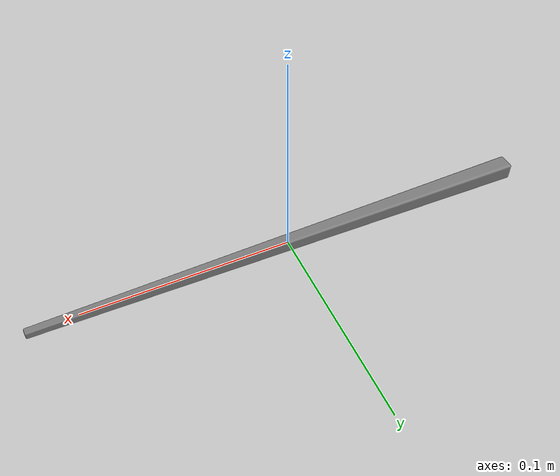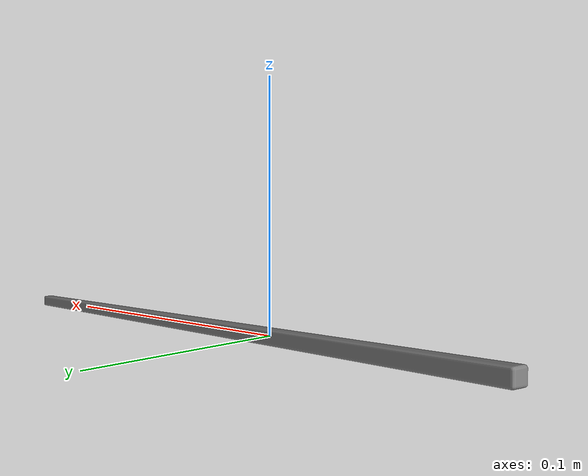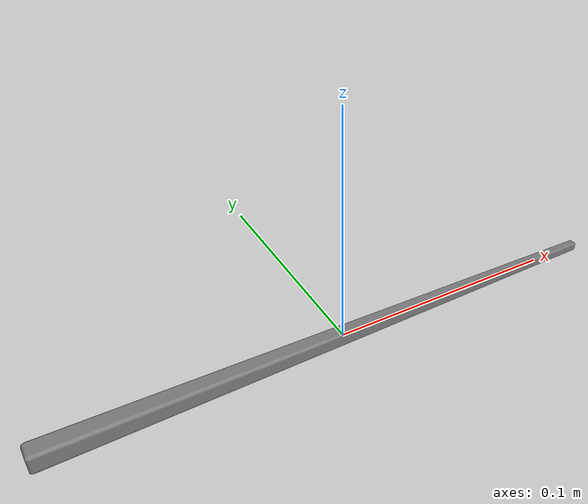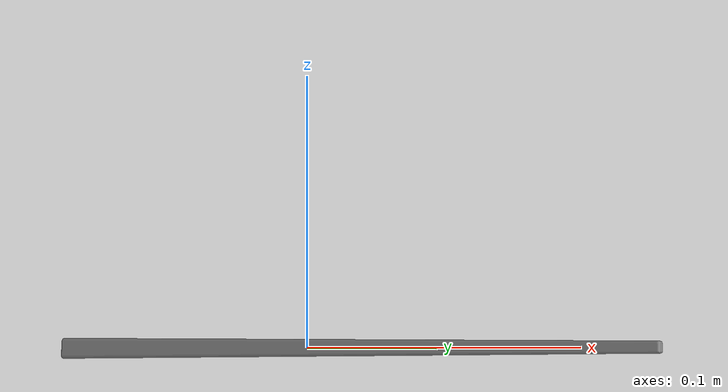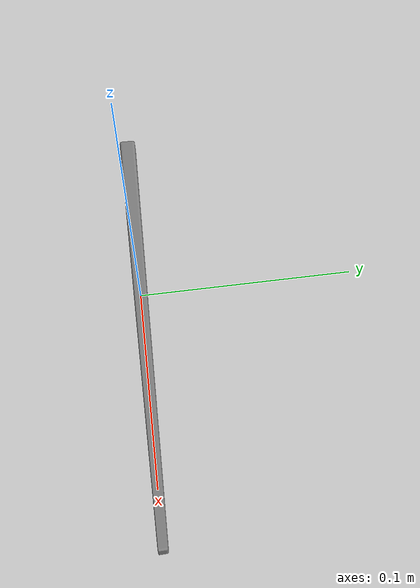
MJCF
<?xml version="1.0" ?>
<mujoco model="chopstick">
	<compiler meshdir="chopstick/meshes" texturedir="chopstick/textures" angle="radian" autolimits="true" balanceinertia="true" boundmass="0.000001" boundinertia="0.000001" inertiafromgeom="false"/>
	<default>
		<default class="chopstick_visual">
			<geom contype="0" conaffinity="0"/>
		</default>
		<default class="chopstick_collision">
			<geom rgba="1.0 0.0 0.0 0.0"/>
		</default>
	</default>
	<asset>
		<mesh name="Chopstick" file="stl/Chopstick.stl" scale="1.0 1.0 1.0"/>
		<mesh name="UCX_Chopstick_001" file="stl/UCX_Chopstick_001.stl" scale="1.0 1.0 1.0"/>
	</asset>
	<worldbody>
		<body name="chopstick" pos="0.0 0.0 0.0" quat="1.0 0.0 0.0 0.0">
			<freejoint/>
			<inertial mass="9.571676142513752" pos="-0.01242069110274315 -2.6069672458106652e-05 2.0396273612277582e-06" quat="-0.6296501755714417 0.7768787145614624 0.000263357738731429 -0.0002916440716944635" diaginertia="7.328827678065863e-05 5.1155122491763905e-02 5.115518069942482e-02"/>
			<geom name="Chopstick" type="mesh" pos="-0.03242069110274315 -2.606967063911725e-05 2.0396691979840398e-06" quat="0.5490840077400208 0.44510242342948914 0.5495014190673828 0.44546470046043396" mesh="Chopstick" class="chopstick_visual"/>
			<geom name="UCX_Chopstick_001" type="mesh" pos="-0.032421328127384186 -2.625211163831409e-05 1.849746809057251e-06" quat="0.5516233444213867 0.44195276498794556 0.5520375370979309 0.44231659173965454" mesh="UCX_Chopstick_001" class="chopstick_collision"/>
		</body>
	</worldbody>
	<equality/>
</mujoco>
